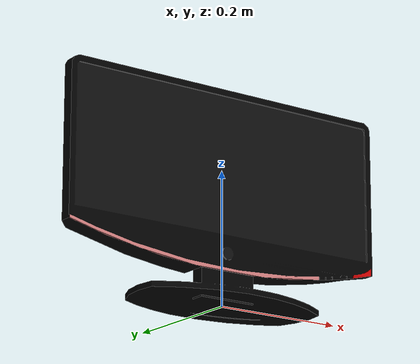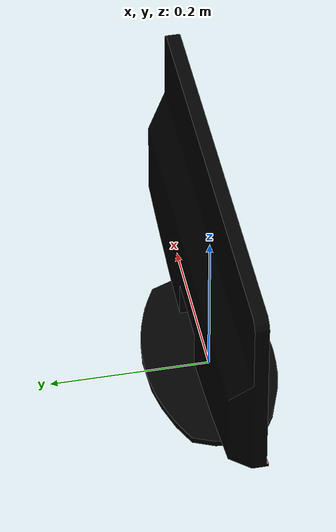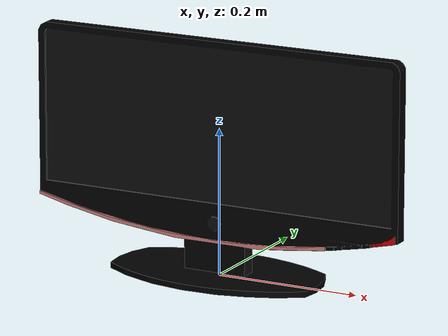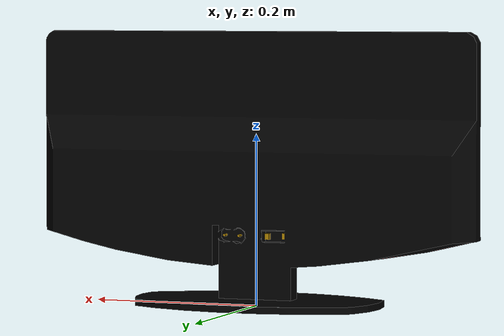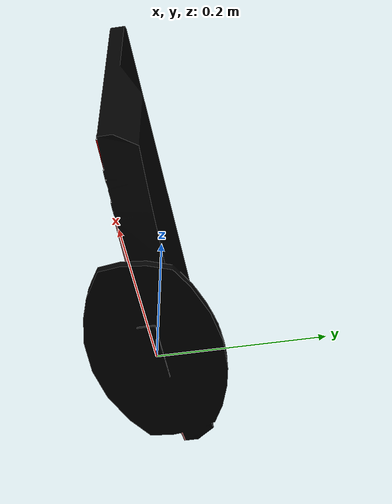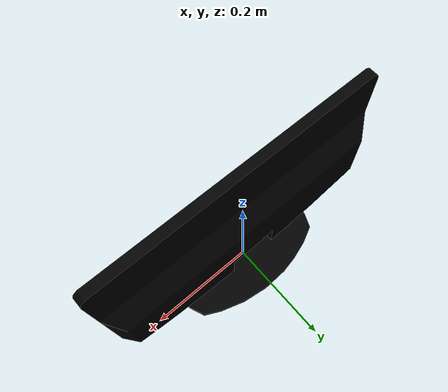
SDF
<?xml version="1.0"?>
<sdf version="1.4">
  <model name="computer_screen">
    <static>true</static>
    <link name="link">
      <pose>0 0 0 0 0 0</pose>
      <collision name="collision">
        <geometry>
          <mesh>
             <uri>model://computer_screen/computer_screen_collision.dae</uri>
	     <scale>0.08 0.08 0.08</scale>
          </mesh>
        </geometry>
      </collision>
      <visual name="visual">
         <geometry>
          <mesh>
            <uri>model://computer_screen/computer_screen_visual.dae</uri>
		<scale>0.08 0.08 0.08</scale>
          </mesh>
        </geometry>
      </visual>
    </link>
  </model>
</sdf>
